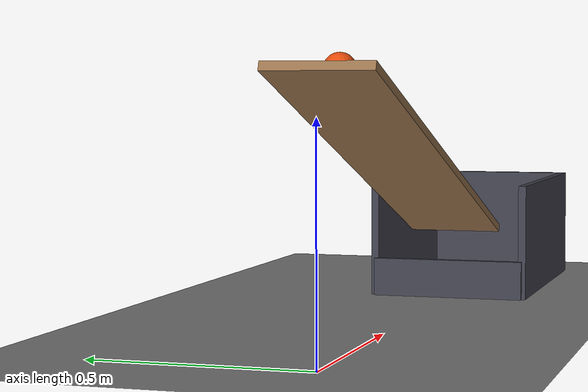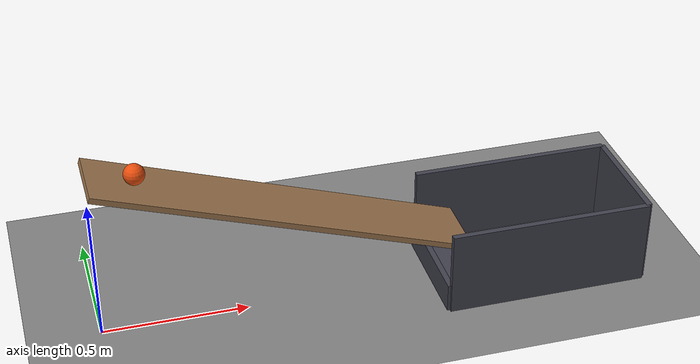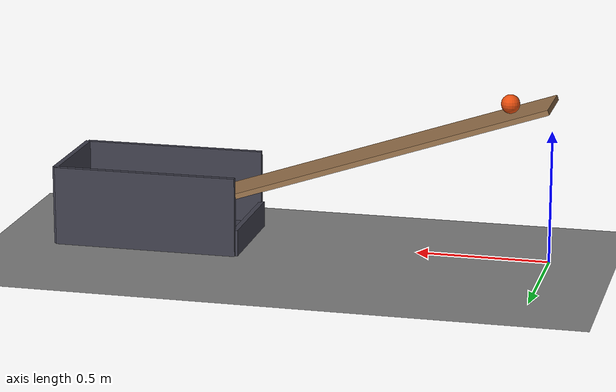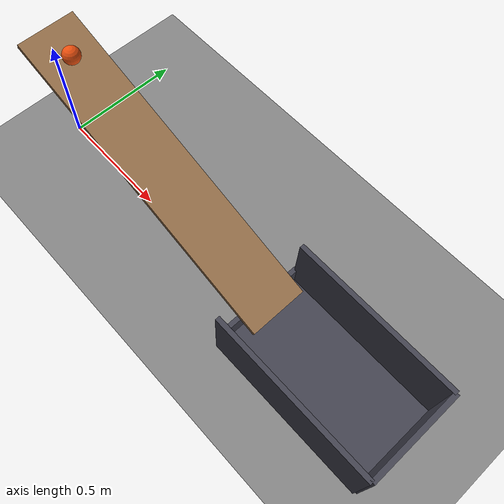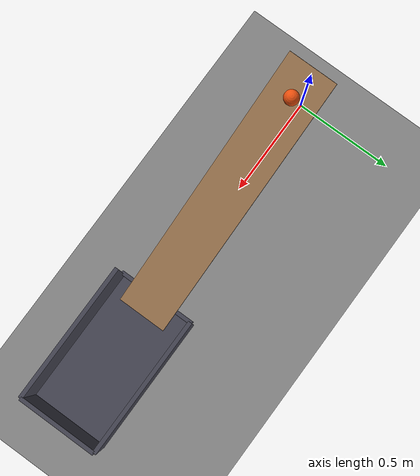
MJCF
<mujoco model="ball_rolls_into_a_cup">
  <compiler angle="radian"/>
  <option timestep="0.002"/>
  <worldbody>
    <geom name="floor" type="plane" size="6 6 0.1" friction="0.8 0.005 0.002"/>
    <body name="ramp">
      <geom name="ramp" type="box" pos="0.625 0 0.39" size="0.659337 0.12 0.01" euler="0 0.324149 0" friction="0.8 0.005 0.001" solref="0.01 1" rgba="0.6 0.45 0.3 1"/>
    </body>
    <body name="cup">
      <geom name="cup_base" type="box" pos="1.5 0 0.01" size="0.35 0.2 0.01" friction="0.9 0.02 0.02" solref="0.01 1" rgba="0.25 0.25 0.3 1"/>
      <geom name="cup_near_wall" type="box" pos="1.15 0 0.05" size="0.01 0.2 0.05" friction="0.9 0.02 0.02" solref="0.01 1" rgba="0.25 0.25 0.3 1"/>
      <geom name="cup_far_wall" type="box" pos="1.85 0 0.15" size="0.01 0.2 0.15" friction="0.9 0.02 0.02" solref="0.01 1" rgba="0.25 0.25 0.3 1"/>
      <geom name="cup_left_wall" type="box" pos="1.5 0.2 0.15" size="0.35 0.01 0.15" friction="0.9 0.02 0.02" solref="0.01 1" rgba="0.25 0.25 0.3 1"/>
      <geom name="cup_right_wall" type="box" pos="1.5 -0.2 0.15" size="0.35 0.01 0.15" friction="0.9 0.02 0.02" solref="0.01 1" rgba="0.25 0.25 0.3 1"/>
    </body>
    <body name="ball" pos="0.156521 0 0.594881">
      <freejoint/>
      <geom name="ball" type="sphere" pos="0 0 0" size="0.035" mass="0.1" condim="6" friction="0.8 0.005 0.001" solref="0.01 1" rgba="0.9 0.3 0.05 1"/>
    </body>
  </worldbody>
  <keyframe>
    <key name="start" qpos="0.156521 0 0.594881 1 0 0 0" qvel="0 0 0 0 0 0"/>
  </keyframe>
</mujoco>
